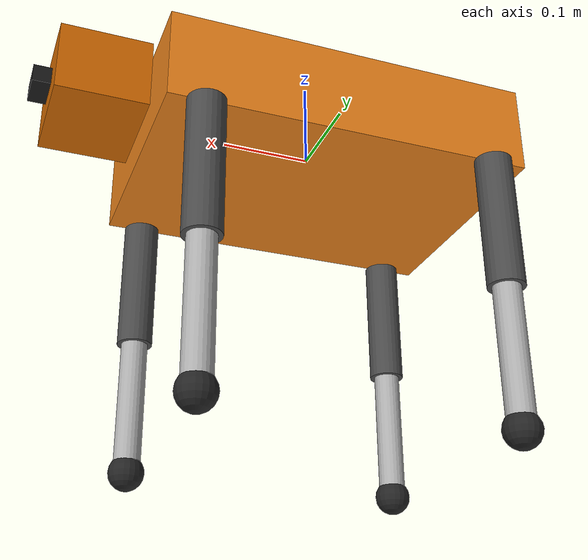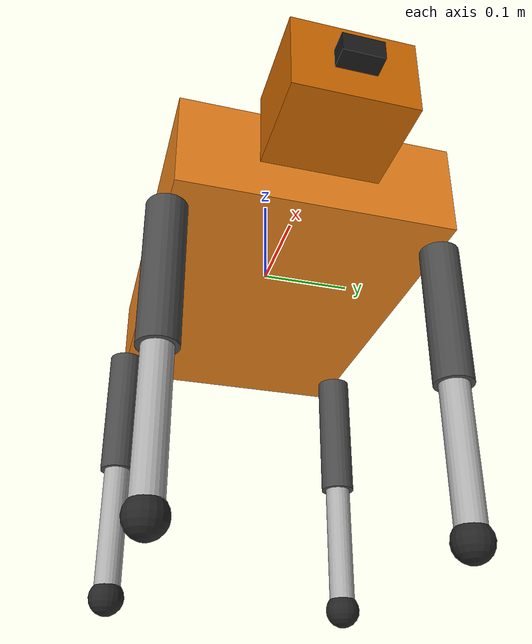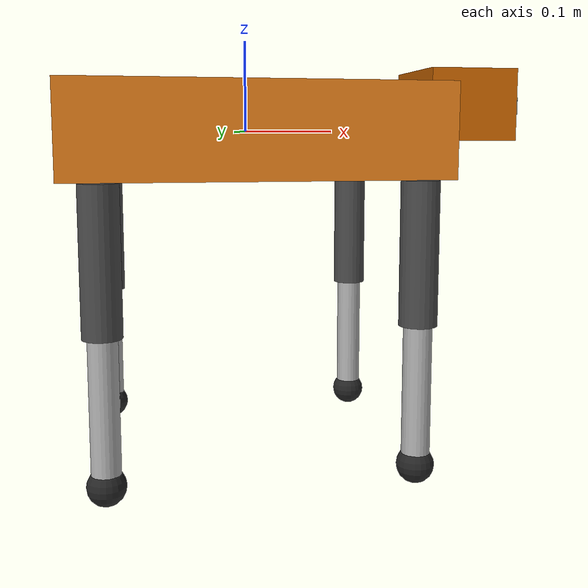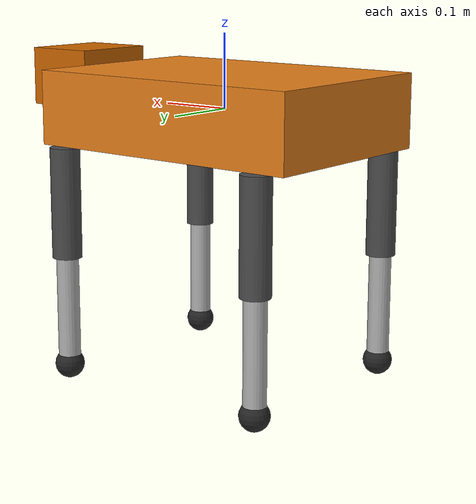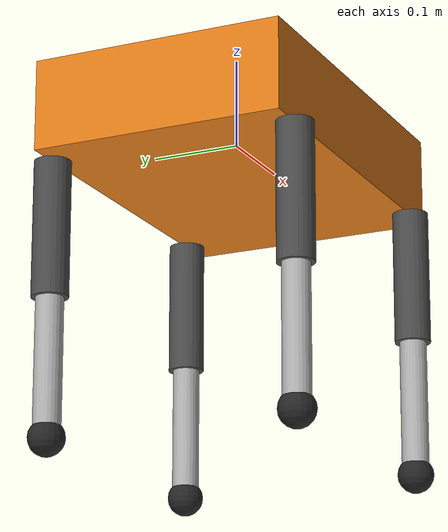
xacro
<?xml version="1.0"?>

<robot xmlns:xacro="http://www.ros.org/wiki/xacro" name="robodog">

  <xacro:arg name="gz_model_name" default="robodog"/>
  <xacro:property name="gz_model" value="$(arg gz_model_name)"/>
  <!-- gz_model is now available as ${gz_model} anywhere in this file -->

  <!-- Body (main torso) dimensions -->
  <xacro:property name="body_length" value="0.4"/>   <!-- fore-aft length (X) -->
  <xacro:property name="body_width"  value="0.28"/>  <!-- lateral width (Y): wider = more stable stance -->
  <xacro:property name="body_height" value="0.1"/>   <!-- vertical height (Z) -->
  <xacro:property name="body_mass"   value="5.0"/>   <!-- kg: heavier body lowers CoG, resists tipping -->

  <!-- Head block dimensions -->
  <xacro:property name="head_length" value="0.1"/>
  <xacro:property name="head_width"  value="0.12"/>
  <xacro:property name="head_height" value="0.08"/>
  <xacro:property name="head_mass"   value="0.3"/>

  <!-- Camera cube dimensions -->
  <xacro:property name="camera_size" value="0.02"/>   <!-- side length (m) -->
  <xacro:property name="camera_mass" value="0.01"/>

  <!-- Upper leg (thigh) dimensions — cylindrical link -->
  <xacro:property name="upper_leg_radius" value="0.02"/>
  <xacro:property name="upper_leg_length" value="0.15"/>
  <xacro:property name="upper_leg_mass"   value="0.2"/>    <!-- kg -->

  <!-- Lower leg (shin) dimensions — thinner cylinder -->
  <xacro:property name="lower_leg_radius" value="0.015"/>
  <xacro:property name="lower_leg_length" value="0.15"/>
  <xacro:property name="lower_leg_mass"   value="0.1"/>

  <!-- Foot — small sphere at the tip of each lower leg for stable ground contact -->
  <xacro:property name="foot_radius" value="0.02"/>
  <xacro:property name="foot_mass"   value="0.05"/>

  <!-- Box inertia: Ixx = m(y²+z²)/12, Iyy = m(x²+z²)/12, Izz = m(x²+y²)/12 -->
  <xacro:macro name="box_inertia" params="m x y z">
    <inertial>
      <mass value="${m}"/>
      <inertia ixx="${(1.0/12.0)*m*(y*y+z*z)}" ixy="0.0" ixz="0.0"
               iyy="${(1.0/12.0)*m*(x*x+z*z)}" iyz="0.0"
               izz="${(1.0/12.0)*m*(x*x+y*y)}"/>
    </inertial>
  </xacro:macro>

  <!-- Cylinder inertia (solid, uniform density):
       Ixx = Iyy = m(3r²+l²)/12   (lateral bending)
       Izz = mr²/2                 (spinning around long axis) -->
  <xacro:macro name="cylinder_inertia" params="m r l">
    <inertial>
      <mass value="${m}"/>
      <inertia ixx="${(1.0/12.0)*m*(3*r*r+l*l)}" ixy="0.0" ixz="0.0"
               iyy="${(1.0/12.0)*m*(3*r*r+l*l)}" iyz="0.0"
               izz="${(1.0/2.0)*m*r*r}"/>
    </inertial>
  </xacro:macro>

  <!-- Sphere inertia (solid, uniform density):
       Ixx = Iyy = Izz = 2mr²/5   (same in all axes by symmetry) -->
  <xacro:macro name="sphere_inertia" params="m r">
    <inertial>
      <mass value="${m}"/>
      <inertia ixx="${(2.0/5.0)*m*r*r}" ixy="0.0" ixz="0.0"
               iyy="${(2.0/5.0)*m*r*r}" iyz="0.0"
               izz="${(2.0/5.0)*m*r*r}"/>
    </inertial>
  </xacro:macro>

  <xacro:macro name="leg" params="prefix x_offset y_offset">

    <!-- ── Upper leg (thigh) link ──────────────────────────────────────── -->
    <link name="${prefix}_upper_leg">
      <visual>
        <geometry>
          <!-- Cylinder rendered along Z axis, shifted down so top is at the hip -->
          <cylinder radius="${upper_leg_radius}" length="${upper_leg_length}"/>
        </geometry>
        <!-- Origin offset: cylinder centre is at -length/2 in Z, so the joint
             origin (top of the cylinder) aligns with the hip joint. -->
        <origin xyz="0 0 ${-upper_leg_length/2}" rpy="0 0 0"/>
        <material name="dark_grey">
          <color rgba="0.3 0.3 0.3 1.0"/>
        </material>
      </visual>
      <!-- Collision geometry mirrors visual for accurate contact detection -->
      <collision>
        <geometry>
          <cylinder radius="${upper_leg_radius}" length="${upper_leg_length}"/>
        </geometry>
        <origin xyz="0 0 ${-upper_leg_length/2}" rpy="0 0 0"/>
      </collision>
      <!-- Inertia computed from upper leg mass and cylinder dimensions -->
      <xacro:cylinder_inertia m="${upper_leg_mass}" r="${upper_leg_radius}" l="${upper_leg_length}"/>
    </link>

    <!-- ── Hip joint ───────────────────────────────────────────────────── -->
    <joint name="${prefix}_hip_joint" type="revolute">
      <parent link="base_link"/>
      <child  link="${prefix}_upper_leg"/>
      <!-- x_offset, y_offset position the hip at the correct corner of the body.
           z = -body_height/2 places it at the bottom edge of the body. -->
      <origin xyz="${x_offset} ${y_offset} ${-body_height/2}" rpy="0 0 0"/>
      <axis xyz="0 1 0"/>   <!-- Rotation around Y → fore/aft swing -->
      <!-- Joint travel: ±0.8 rad (~46°) fore and aft.
           Effort limit 100 Nm, velocity limit 10 rad/s. -->
      <limit lower="-0.8" upper="0.8" effort="100.0" velocity="10.0"/>
      <!-- High damping resists rapid/uncontrolled leg movement (e.g. buckling at spawn) -->
      <dynamics damping="5.0" friction="0.2"/>
    </joint>

    <!-- ── Lower leg (shin) link ──────────────────────────────────────── -->
    <link name="${prefix}_lower_leg">
      <visual>
        <geometry>
          <!-- Thinner cylinder than the upper leg for realistic proportions -->
          <cylinder radius="${lower_leg_radius}" length="${lower_leg_length}"/>
        </geometry>
        <origin xyz="0 0 ${-lower_leg_length/2}" rpy="0 0 0"/>
        <material name="light_grey">
          <color rgba="0.7 0.7 0.7 1.0"/>
        </material>
      </visual>
      <collision>
        <geometry>
          <cylinder radius="${lower_leg_radius}" length="${lower_leg_length}"/>
        </geometry>
        <origin xyz="0 0 ${-lower_leg_length/2}" rpy="0 0 0"/>
      </collision>
      <xacro:cylinder_inertia m="${lower_leg_mass}" r="${lower_leg_radius}" l="${lower_leg_length}"/>
    </link>

    <!-- ── Knee joint ─────────────────────────────────────────────────── -->
    <!-- Connects upper leg to lower leg.  Also revolves around Y axis.
         Origin is at the BOTTOM of the upper leg (i.e. origin z = -upper_leg_length
         relative to the upper leg's own frame). -->
    <joint name="${prefix}_knee_joint" type="revolute">
      <parent link="${prefix}_upper_leg"/>
      <child  link="${prefix}_lower_leg"/>
      <origin xyz="0 0 ${-upper_leg_length}" rpy="0 0 0"/>
      <axis xyz="0 1 0"/>
      <!-- Knee only bends downward/backward (lower=-1.5 rad), never extends past 0.
           This mimics real quadruped knee anatomy. -->
      <limit lower="-1.5" upper="0.0" effort="100.0" velocity="10.0"/>
      <!-- High damping prevents knee from snapping/bouncing at spawn or step impact -->
      <dynamics damping="5.0" friction="0.2"/>
    </joint>

    <!-- ── Foot link ──────────────────────────────────────────────────── -->
    <link name="${prefix}_foot">
      <visual>
        <geometry>
          <sphere radius="${foot_radius}"/>
        </geometry>
        <material name="rubber_black">
          <color rgba="0.15 0.15 0.15 1.0"/>   <!-- Dark rubber colour -->
        </material>
      </visual>
      <collision>
        <geometry>
          <sphere radius="${foot_radius}"/>
        </geometry>
      </collision>
      <xacro:sphere_inertia m="${foot_mass}" r="${foot_radius}"/>
    </link>

    <!-- Foot joint: FIXED — the foot doesn't rotate relative to the lower leg -->
    <joint name="${prefix}_foot_joint" type="fixed">
      <parent link="${prefix}_lower_leg"/>
      <child  link="${prefix}_foot"/>
      <!-- Place the foot sphere at the very bottom of the lower leg cylinder -->
      <origin xyz="0 0 ${-lower_leg_length}" rpy="0 0 0"/>
    </joint>

    <!-- ── Gazebo material colours ─────────────────────────────────────── -->
    <gazebo reference="${prefix}_upper_leg">
      <material>Gazebo/DarkGrey</material>
    </gazebo>
    <gazebo reference="${prefix}_lower_leg">
      <material>Gazebo/Grey</material>
    </gazebo>

    <gazebo reference="${prefix}_foot">
      <material>Gazebo/Black</material>
      <!-- Legacy Gazebo Classic tags (kept for backward compatibility) -->
      <mu1>1.5</mu1>
      <mu2>1.5</mu2>
      <kp>1000000.0</kp>     <!-- Contact spring stiffness (N/m) -->
      <kd>100.0</kd>          <!-- Contact damping coefficient -->
      <minDepth>0.005</minDepth>

      <!-- Gazebo Harmonic (Ignition) specific collision surface parameters -->
      <collision>
        <surface>
          <friction>
            <ode>
              <mu>1.5</mu>    <!-- Primary friction (along motion direction) -->
              <mu2>1.5</mu2>  <!-- Secondary friction (lateral direction) -->
            </ode>
          </friction>
          <contact>
            <ode>
              <kp>1000000.0</kp>     <!-- Stiffness: prevents foot from sinking too deep -->
              <kd>100.0</kd>          <!-- Damping: prevents bouncing on contact -->
              <min_depth>0.005</min_depth>  <!-- Minimum penetration allowed (m) -->
            </ode>
          </contact>
        </surface>
      </collision>
    </gazebo>

    <gazebo>
      <plugin filename="gz-sim-joint-position-controller-system"
              name="gz::sim::systems::JointPositionController">
        <joint_name>${prefix}_hip_joint</joint_name>
        <topic>/model/${gz_model}/joint/${prefix}_hip_joint/cmd_pos</topic>
        <!-- Stiff PID: needs to resist gravity and inertia during walking -->
        <p_gain>200</p_gain>   <!-- Proportional: high = very stiff joint -->
        <i_gain>0.5</i_gain>   <!-- Integral: eliminates steady-state position error -->
        <d_gain>10.0</d_gain>  <!-- Derivative: damps oscillation / prevents bouncing -->
        <cmd_max>50</cmd_max>  <!-- Max torque (N·m) — enough to hold the body weight -->
        <cmd_min>-50</cmd_min>
        <initial_position>0.0</initial_position>  <!-- Hip starts centred (legs point straight down) -->
      </plugin>
    </gazebo>
    <gazebo>
      <plugin filename="gz-sim-joint-position-controller-system"
              name="gz::sim::systems::JointPositionController">
        <joint_name>${prefix}_knee_joint</joint_name>
        <topic>/model/${gz_model}/joint/${prefix}_knee_joint/cmd_pos</topic>
        <p_gain>200</p_gain>
        <i_gain>0.5</i_gain>
        <d_gain>10.0</d_gain>
        <cmd_max>50</cmd_max>
        <cmd_min>-50</cmd_min>
        <initial_position>-0.5</initial_position>
      </plugin>
    </gazebo>
  </xacro:macro>

  <!-- ==================== LINKS & JOINTS ====================
       Now we define the actual robot structure using the macros above.
  -->

  <link name="base_link">
    <visual>
      <geometry>
        <!-- Rectangular box: length × width × height -->
        <box size="${body_length} ${body_width} ${body_height}"/>
      </geometry>
      <material name="orange">
        <color rgba="0.9 0.5 0.1 1.0"/>   <!-- Orange body for easy visibility -->
      </material>
    </visual>
    <collision>
      <geometry>
        <box size="${body_length} ${body_width} ${body_height}"/>
      </geometry>
    </collision>
    <xacro:box_inertia m="${body_mass}" x="${body_length}" y="${body_width}" z="${body_height}"/>
  </link>

  <!-- Override body colour in Gazebo (URDF materials are RViz-only) -->
  <gazebo reference="base_link">
    <material>Gazebo/Orange</material>
  </gazebo>

  <link name="head_link">
    <visual>
      <geometry>
        <box size="${head_length} ${head_width} ${head_height}"/>
      </geometry>
      <material name="dark_orange">
        <color rgba="0.8 0.4 0.0 1.0"/>
      </material>
    </visual>
    <collision>
      <geometry>
        <box size="${head_length} ${head_width} ${head_height}"/>
      </geometry>
    </collision>
    <xacro:box_inertia m="${head_mass}" x="${head_length}" y="${head_width}" z="${head_height}"/>
  </link>

  <!-- Head joint: revolute around Z → left/right pan
       Origin: positioned at the front face of base_link, vertically centred.
       Limit: ±0.5 rad (~29°) to prevent the head from clipping the body. -->
  <joint name="head_joint" type="revolute">
    <parent link="base_link"/>
    <child  link="head_link"/>
    <!-- Place joint at the front edge of the body + half the head length forward,
         raised slightly so the head sits on top of the body rim. -->
    <origin xyz="${body_length/2 + head_length/2} 0 ${body_height/2 - head_height/2 + 0.02}" rpy="0 0 0"/>
    <axis xyz="0 0 1"/>   <!-- Rotation around Z axis = yaw = pan left/right -->
    <limit lower="-0.5" upper="0.5" effort="5" velocity="2"/>
    <dynamics damping="0.3" friction="0.1"/>
  </joint>

  <gazebo reference="head_link">
    <material>Gazebo/DarkGrey</material>
  </gazebo>

  <!-- Head joint PID controller — same system as leg joints but lower gains
       because the head is lighter and needs gentler control. -->
  <gazebo>
    <plugin filename="gz-sim-joint-position-controller-system"
            name="gz::sim::systems::JointPositionController">
      <joint_name>head_joint</joint_name>
      <topic>/model/${gz_model}/joint/head_joint/cmd_pos</topic>
      <p_gain>10</p_gain>
      <i_gain>0.1</i_gain>
      <d_gain>0.5</d_gain>
      <cmd_max>5</cmd_max>
      <cmd_min>-5</cmd_min>
      <initial_position>0.0</initial_position>   <!-- Head starts facing forward -->
    </plugin>
  </gazebo>

  <link name="camera_link">
    <visual>
      <geometry>
        <!-- Slightly wider than tall to look like a camera module -->
        <box size="${camera_size} ${camera_size*2} ${camera_size}"/>
      </geometry>
      <material name="black">
        <color rgba="0.1 0.1 0.1 1.0"/>
      </material>
    </visual>
    <collision>
      <geometry>
        <box size="${camera_size} ${camera_size*2} ${camera_size}"/>
      </geometry>
    </collision>
    <xacro:box_inertia m="${camera_mass}" x="${camera_size}" y="${camera_size*2}" z="${camera_size}"/>
  </link>

  <!-- Camera joint: FIXED — camera doesn't move independently of the head -->
  <joint name="camera_joint" type="fixed">
    <parent link="head_link"/>
    <child  link="camera_link"/>
    <!-- Placed at the very front face of the head block -->
    <origin xyz="${head_length/2 + camera_size/2} 0 0" rpy="0 0 0"/>
  </joint>

  <link name="camera_optical_frame"/>

  <joint name="camera_optical_joint" type="fixed">
    <parent link="camera_link"/>
    <child  link="camera_optical_frame"/>
    <origin xyz="0 0 0" rpy="${-pi/2} 0 ${-pi/2}"/>
    <!-- rpy: roll=-90° then yaw=-90° converts from body axes to optical axes -->
  </joint>

  <!-- Camera Gazebo sensor plugin — published through the ros_gz_bridge -->
  <gazebo reference="camera_link">
    <material>Gazebo/Black</material>
    <sensor name="camera_sensor" type="camera">
      <always_on>true</always_on>     <!-- Keep publishing even when not viewed in GUI -->
      <update_rate>30</update_rate>   <!-- 30 fps — standard camera rate -->
      <visualize>true</visualize>     <!-- Show the camera frustum in Gazebo GUI -->
      <camera>
        <!-- Horizontal field of view: 1.3962634 rad ≈ 80° — wide-angle view -->
        <horizontal_fov>1.3962634</horizontal_fov>
        <image>
          <width>640</width>    <!-- Pixels -->
          <height>480</height>  <!-- Pixels -->
          <format>R8G8B8</format>  <!-- 24-bit RGB, no alpha -->
        </image>
        <clip>
          <near>0.02</near>   <!-- Minimum render distance (m) — avoids z-fighting -->
          <far>100</far>      <!-- Maximum render distance (m) -->
        </clip>
      </camera>
      <!-- Topic names used by the ros_gz_bridge to expose images to ROS -->
      <topic>/camera/image_raw</topic>
      <camera_info_topic>/camera/camera_info</camera_info_topic>
      <!-- Publish image/CameraInfo in the optical frame so vision nodes get
           correct coordinate conventions out of the box. -->
      <gz_frame_id>camera_optical_frame</gz_frame_id>
    </sensor>
  </gazebo>

  <!-- Front Left: near the front of the body (+x), on the left side (+y) -->
  <xacro:leg prefix="front_left"
             x_offset="${body_length/2 - 0.04}"
             y_offset="${body_width/2}"/>

  <!-- Front Right: near the front of the body (+x), on the right side (-y) -->
  <xacro:leg prefix="front_right"
             x_offset="${body_length/2 - 0.04}"
             y_offset="${-body_width/2}"/>

  <!-- Rear Left: near the rear of the body (-x), on the left side (+y) -->
  <xacro:leg prefix="rear_left"
             x_offset="${-body_length/2 + 0.04}"
             y_offset="${body_width/2}"/>

  <!-- Rear Right: near the rear of the body (-x), on the right side (-y) -->
  <xacro:leg prefix="rear_right"
             x_offset="${-body_length/2 + 0.04}"
             y_offset="${-body_width/2}"/>

  <gazebo>
    <plugin filename="gz-sim-joint-state-publisher-system"
            name="gz::sim::systems::JointStatePublisher">
      <topic>joint_states</topic>   <!-- Relative topic; bridge remaps to /joint_states -->
    </plugin>
  </gazebo>

  <gazebo>
    <plugin filename="gz-sim-odometry-publisher-system"
            name="gz::sim::systems::OdometryPublisher">
      <odom_frame>odom</odom_frame>
      <robot_base_frame>base_link</robot_base_frame>
      <odom_publish_frequency>50</odom_publish_frequency>   <!-- Hz -->
      <odom_topic>odometry_with_covariance</odom_topic>
      <dimensions>3</dimensions>
    </plugin>
  </gazebo>

</robot>
